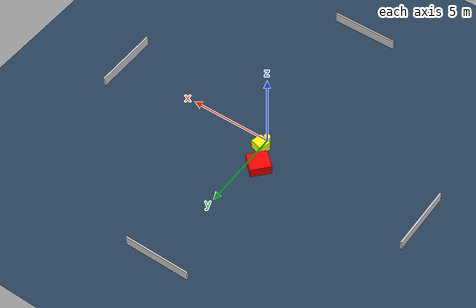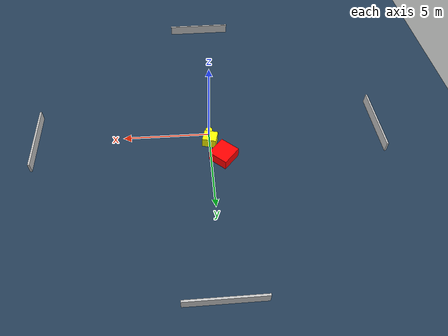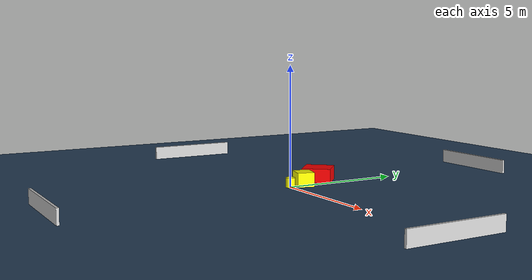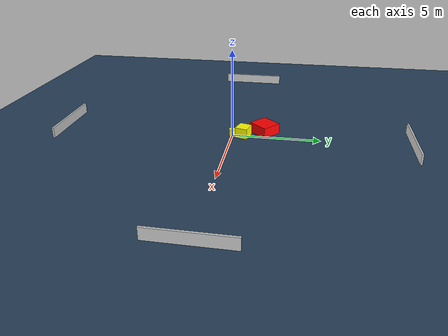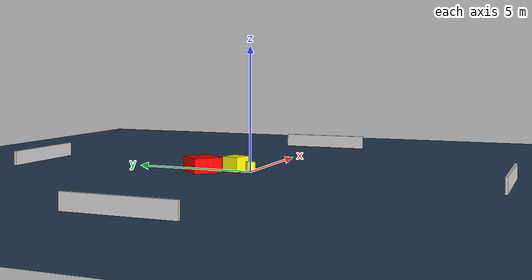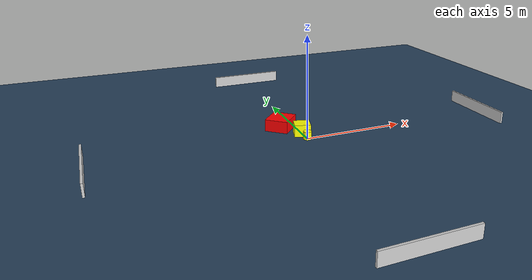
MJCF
<?xml version="1.0" ?>
<mujoco model="generated_environment">
  <option timestep="0.01" integrator="RK4" cone="elliptic"/>
  <default>
    <geom density="1"/>
  </default>
  <asset>
    <texture builtin="gradient" height="3072" name="skybox" rgb1="0.3 0.5 0.7" rgb2="0 0 0" type="skybox" width="512"/>
    <texture builtin="checker" height="300" name="groundplane" rgb1="0.2 0.3 0.4" rgb2="0.1 0.2 0.3" type="2d" width="300"/>
    <material name="groundplane" reflectance="0.2" texrepeat="5 5" texture="groundplane"/>
  </asset>
  <worldbody>
    <light dir="0 0 -1" directional="true" pos="0 0 1.5"/>
    <geom condim="3" friction="0.5 0.005 0.001" material="groundplane" name="floor" pos="0 0 0" size="0 0 0.05" type="plane"/>
    <body name="walls">
      <geom name="wall_1" condim="4" pos="-10.0 0.0 0.3" rgba="0.800000011920929 0.800000011920929 0.800000011920929 1.0" size="0.05 2.0 0.3" type="box"/>
      <geom name="wall_2" condim="4" pos="10.0 0.0 0.3" rgba="0.800000011920929 0.800000011920929 0.800000011920929 1.0" size="0.05 2.0 0.3" type="box"/>
      <geom name="wall_3" condim="4" pos="0.0 -10.0 0.3" rgba="0.800000011920929 0.800000011920929 0.800000011920929 1.0" size="2.0 0.05 0.3" type="box"/>
      <geom name="wall_4" condim="4" pos="0.0 10.0 0.3" rgba="0.800000011920929 0.800000011920929 0.800000011920929 1.0" size="2.0 0.05 0.3" type="box"/>
    </body>
    <body name="robot">
      <joint name="joint_x" type="slide" pos="0 0 0" axis="1 0 0"/>
      <joint name="joint_y" type="slide" pos="0 0 0" axis="0 1 0"/>
      <geom name="robot" type="cylinder" pos="0.0 0.0 0.2" size="0.2 0.2 0.0" mass="5.0" friction="1.0 0.005 0.0001" condim="4" rgba="1.0 1.0 0.0 1.0"/>
    </body>
    <body name="obstacle_1_movable">
      <geom name="obstacle_1_movable" condim="4" pos="-0.019585026523633867 0.6365731554270861 0.3" euler="0 0 255.22213960725094" friction="0.0 0.005 0.001" rgba="1.0 1.0 0.0 1.0" size="0.3542252839703788 0.39365743839218803 0.3" type="box" mass="0.1"/>
      <joint type="free"/>
    </body>
    <body name="obstacle_2_static">
      <geom name="obstacle_2_static" condim="4" pos="-0.6976414717774391 1.792738642597777 0.3" euler="0 0 318.0739303842215" friction="0.0 0.005 0.001" rgba="1.0 0.0 0.0 1.0" size="0.5842836942745744 0.6106309444649594 0.3" type="box"/>
    </body>
  </worldbody>
  <actuator>
    <motor name="actuator_x" joint="joint_x" gear="1" ctrlrange="-1 1"/>
    <motor name="actuator_y" joint="joint_y" gear="1" ctrlrange="-1 1"/>
  </actuator>
</mujoco>
